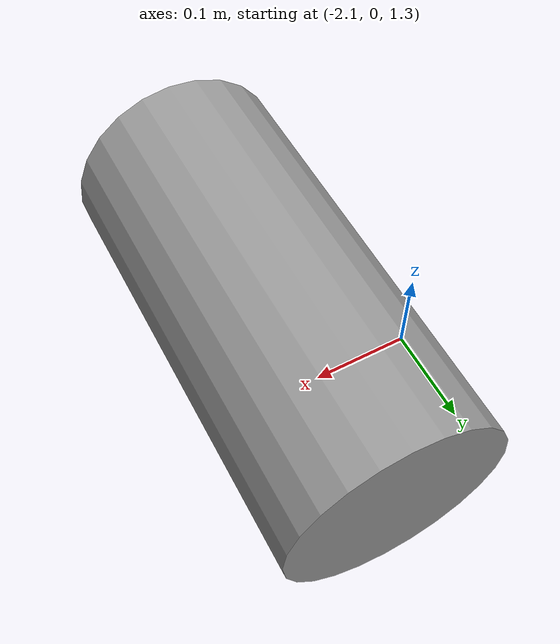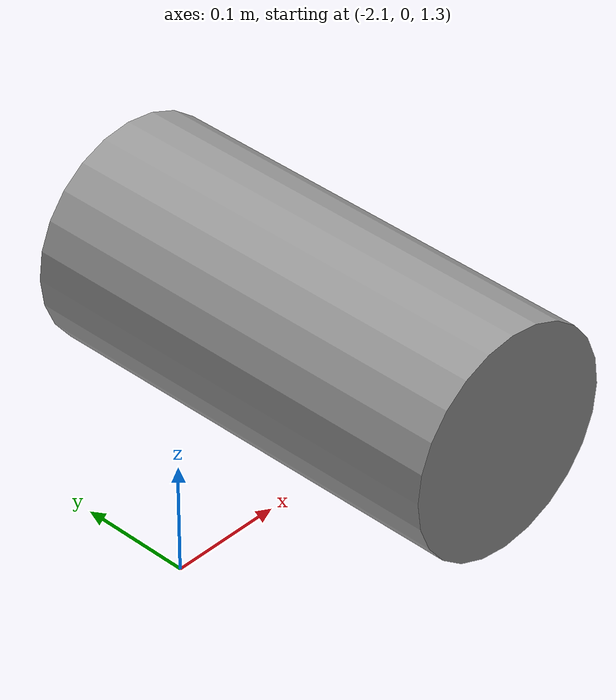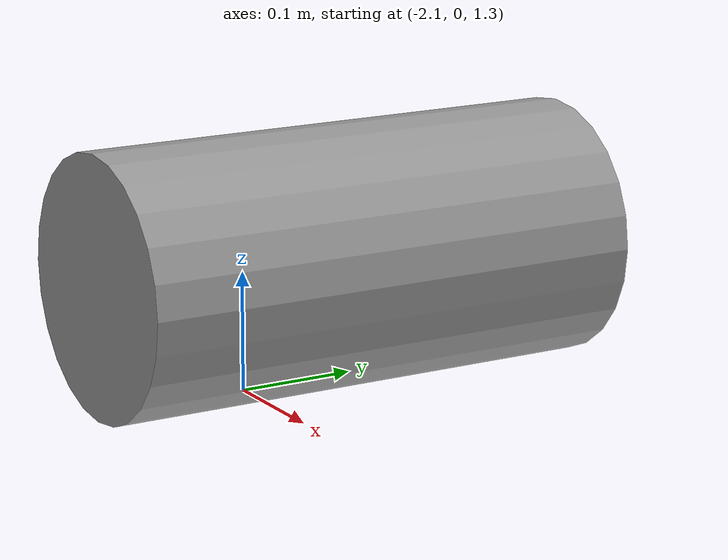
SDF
<?xml version='1.0'?>
<sdf version='1.7'>
  <model name='TL_Anchor'>
    <link name='tl_link'>
      <inertial>
        <mass>1</mass>
        <inertia>
          <ixx>0.145833</ixx>
          <ixy>0</ixy>
          <ixz>0</ixz>
          <iyy>0.145833</iyy>
          <iyz>0</iyz>
          <izz>0.125</izz>
        </inertia>
        <pose>0 0 0 0 -0 0</pose>
      </inertial>
     <pose>-1.95165 1e-06 1.44822 0 -0 0</pose>
      <gravity>0</gravity>
      <self_collide>0</self_collide>
      <static>1</static>
      <enable_wind>0</enable_wind>
      <visual name='visual'>
        <pose>0 0 0 1.57 -0 0</pose>
        <geometry>
          <cylinder>
            <radius>0.1</radius>
            <length>0.4</length>
          </cylinder>
        </geometry>
        <material>
          <lighting>1</lighting>
          <script>
            <uri>file://media/materials/scripts/gazebo.material</uri>
            <name>Gazebo/Grey</name>
          </script>
          <shader type='pixel'>
            <normal_map>__default__</normal_map>
          </shader>
          <ambient>0.3 0.3 0.3 1</ambient>
          <diffuse>0.7 0.7 0.7 1</diffuse>
          <specular>0.01 0.01 0.01 1</specular>
          <emissive>0 0 0 1</emissive>
        </material>
        <transparency>0</transparency>
        <cast_shadows>1</cast_shadows>
      </visual>
      <collision name='collision'>
        <geometry>
          <cylinder>
            <radius>0.1</radius>
            <length>0.4</length>
          </cylinder>
        </geometry>
        <surface>
          <contact>
            <collide_without_contact>true</collide_without_contact>
          </contact>
        </surface>
      </collision>
    </link>
    <link name='tl_dummy'>
      <pose>-1.95165 0.05 1.44822 0 -0 0</pose>
    </link>
    <link name='tl_cable'>
      <inertial>
        <mass>1</mass>
        <inertia>
          <ixx>0.1</ixx>
          <ixy>0</ixy>
          <ixz>0</ixz>
          <iyy>0.1</iyy>
          <iyz>0</iyz>
          <izz>0.1</izz>
        </inertia>
        <pose>0 0 0 0 -0 0</pose>
      </inertial>
      <pose>-1.95165 1e-06 1.44822 0 -0 0</pose>
      <gravity>0</gravity>
      <self_collide>0</self_collide>
      <kinematic>0</kinematic>
      <enable_wind>0</enable_wind>
      <visual name='visual'>
        <pose>0 0 0 0 -0 0</pose>
        <geometry>
          <sphere>
            <radius>0.01</radius>
          </sphere>
        </geometry>
        <material>
          <lighting>1</lighting>
          <script>
            <uri>file://media/materials/scripts/gazebo.material</uri>
            <name>Gazebo/Grey</name>
          </script>
          <shader type='pixel'>
            <normal_map>__default__</normal_map>
          </shader>
          <ambient>0.3 0.3 0.3 1</ambient>
          <diffuse>0.7 0.7 0.7 1</diffuse>
          <specular>0.01 0.01 0.01 1</specular>
          <emissive>0 0 0 1</emissive>
        </material>
        <transparency>0</transparency>
        <cast_shadows>1</cast_shadows>
      </visual>
      <collision name='collision'>
        <laser_retro>0</laser_retro>
        <max_contacts>10</max_contacts>
        <pose>0 0 0 0 -0 0</pose>
        <geometry>
          <sphere>
            <radius>0.01</radius>
          </sphere>
        </geometry>
        <surface>
          <friction>
            <ode>
              <mu>1</mu>
              <mu2>1</mu2>
              <fdir1>0 0 0</fdir1>
              <slip1>0</slip1>
              <slip2>0</slip2>
            </ode>
            <torsional>
              <coefficient>1</coefficient>
              <patch_radius>0</patch_radius>
              <surface_radius>0</surface_radius>
              <use_patch_radius>1</use_patch_radius>
              <ode>
                <slip>0</slip>
              </ode>
            </torsional>
          </friction>
          <bounce>
            <restitution_coefficient>0</restitution_coefficient>
            <threshold>1e+06</threshold>
          </bounce>
          <contact>
            <collide_without_contact>0</collide_without_contact>
            <collide_without_contact_bitmask>1</collide_without_contact_bitmask>
            <collide_bitmask>1</collide_bitmask>
            <ode>
              <soft_cfm>0</soft_cfm>
              <soft_erp>0.2</soft_erp>
              <kp>1e+13</kp>
              <kd>1</kd>
              <max_vel>0.01</max_vel>
              <min_depth>0</min_depth>
            </ode>
            <bullet>
              <split_impulse>1</split_impulse>
              <split_impulse_penetration_threshold>-0.01</split_impulse_penetration_threshold>
              <soft_cfm>0</soft_cfm>
              <soft_erp>0.2</soft_erp>
              <kp>1e+13</kp>
              <kd>1</kd>
            </bullet>
          </contact>
        </surface>
      </collision>
    </link>
    <joint name='Universal Joint Top Left' type='universal'>
      <parent>tl_link</parent>
      <child>tl_dummy</child>
      <pose>0 0 0 0 -0 0</pose>
      <axis>
        <xyz>1 0 0</xyz>
        <limit>
          <lower>-1</lower>
          <upper>1</upper>
          <effort>-1</effort>
          <velocity>-1</velocity>
        </limit>
        <dynamics>
          <spring_reference>0</spring_reference>
          <spring_stiffness>0</spring_stiffness>
          <damping>0</damping>
          <friction>0</friction>
        </dynamics>
      </axis>
      <axis2>
        <xyz>0 0 1</xyz>
        <limit>
          <lower>-1e+16</lower>
          <upper>1e+16</upper>
          <effort>-1</effort>
          <velocity>-1</velocity>
        </limit>
        <dynamics>
          <spring_reference>0</spring_reference>
          <spring_stiffness>0</spring_stiffness>
          <damping>0</damping>
          <friction>0</friction>
        </dynamics>
      </axis2>
      <physics>
        <ode>
          <limit>
            <cfm>0</cfm>
            <erp>0.2</erp>
          </limit>
          <suspension>
            <cfm>0</cfm>
            <erp>0.2</erp>
          </suspension>
        </ode>
      </physics>
    </joint>
    <joint name='Prismatic Joint Top Left' type='prismatic'>
      <child>tl_cable</child>
      <parent>tl_dummy</parent>
      <pose>0 0 0 0 -0 0</pose>
      <axis>
        <xyz>0 0 1</xyz>
        <limit>
          <lower>-2</lower>
          <upper>2</upper>
          <effort>-1</effort>
          <velocity>-1</velocity>
        </limit>
        <dynamics>
          <spring_reference>0</spring_reference>
          <spring_stiffness>0</spring_stiffness>
          <damping>0</damping>
          <friction>0</friction>
        </dynamics>
      </axis>
      <physics>
        <ode>
          <limit>
            <cfm>0</cfm>
            <erp>0.2</erp>
          </limit>
          <suspension>
            <cfm>0</cfm>
            <erp>0.2</erp>
          </suspension>
        </ode>
      </physics>
    </joint>
    <static>0</static>

    <plugin filename="libignition-gazebo-detachable-joint-system.so" name="ignition::gazebo::systems::DetachableJoint">
       <parent_link>tl_cable</parent_link>
       <child_model>wallbot</child_model>
       <child_link>link_0</child_link>
       <topic>/wallbot_tl_join/detach</topic>
    </plugin>
  </model>
</sdf>
